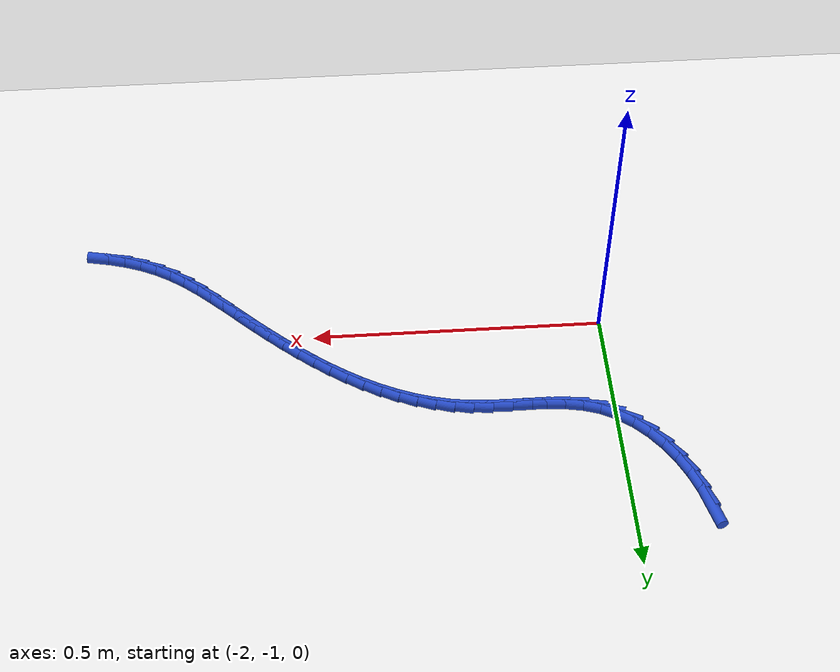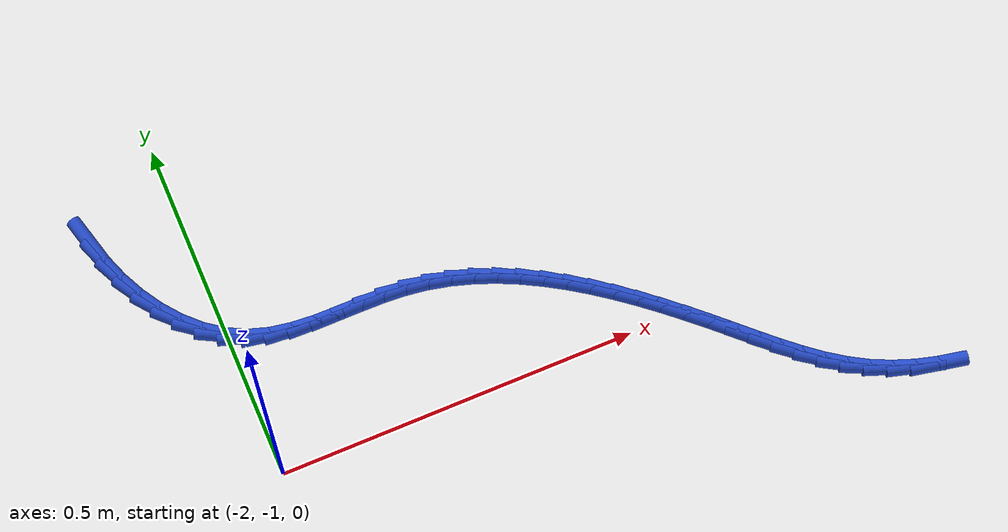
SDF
<sdf version="1.6">
 <world name="default">
  <model name="ground_plane">
   <static>1</static>
   <link name="link">
    <collision name="collision">
     <geometry><plane><normal>0 0 1</normal><size>100 100</size></plane></geometry>
     <surface><friction><ode><mu>100</mu><mu2>50</mu2></ode></friction></surface>
    </collision>
    <visual name="visual">
     <cast_shadows>0</cast_shadows>
     <geometry><plane><normal>0 0 1</normal><size>100 100</size></plane></geometry>
     <material>
      <script><uri>file://media/materials/scripts/gazebo.material</uri><name>Gazebo/WhiteGlow</name></script>
     </material>
    </visual>
   </link>
  </model>
  <model name="line">
   <link name="link_134">
    <pose>-2.124161990740954 -0.5968419919626377 0.01 0 1.57 -1.3200417149505876</pose>
    <collision name="collision">
     <geometry><cylinder><radius>0.01</radius><length>0.08</length></cylinder></geometry>
    </collision>
    <visual name="visual">
     <material>
      <script><name>Gazebo/Blue</name><uri>file://media/materials/scripts/gazebo.material</uri></script>
     </material>
     <geometry><cylinder><radius>0.01</radius><length>0.08</length></cylinder></geometry>
    </visual>
   </link>
   <link name="link_135">
    <pose>-2.115562713282065 -0.6304137877513238 0.01 0 1.57 -1.2233015934322184</pose>
    <collision name="collision">
     <geometry><cylinder><radius>0.01</radius><length>0.08</length></cylinder></geometry>
    </collision>
    <visual name="visual">
     <material>
      <script><name>Gazebo/Blue</name><uri>file://media/materials/scripts/gazebo.material</uri></script>
     </material>
     <geometry><cylinder><radius>0.01</radius><length>0.08</length></cylinder></geometry>
    </visual>
   </link>
   <link name="link_136">
    <pose>-2.1037285020034258 -0.6630876493500641 0.01 0 1.57 -1.1254449375031956</pose>
    <collision name="collision">
     <geometry><cylinder><radius>0.01</radius><length>0.08</length></cylinder></geometry>
    </collision>
    <visual name="visual">
     <material>
      <script><name>Gazebo/Blue</name><uri>file://media/materials/scripts/gazebo.material</uri></script>
     </material>
     <geometry><cylinder><radius>0.01</radius><length>0.08</length></cylinder></geometry>
    </visual>
   </link>
   <link name="link_137">
    <pose>-2.088856327948543 -0.6942443596587087 0.01 0 1.57 -1.022786203440123</pose>
    <collision name="collision">
     <geometry><cylinder><radius>0.01</radius><length>0.08</length></cylinder></geometry>
    </collision>
    <visual name="visual">
     <material>
      <script><name>Gazebo/Blue</name><uri>file://media/materials/scripts/gazebo.material</uri></script>
     </material>
     <geometry><cylinder><radius>0.01</radius><length>0.08</length></cylinder></geometry>
    </visual>
   </link>
   <link name="link_138">
    <pose>-2.0711431621609258 -0.7232647015771075 0.01 0 1.57 -0.9114386806751857</pose>
    <collision name="collision">
     <geometry><cylinder><radius>0.01</radius><length>0.08</length></cylinder></geometry>
    </collision>
    <visual name="visual">
     <material>
      <script><name>Gazebo/Blue</name><uri>file://media/materials/scripts/gazebo.material</uri></script>
     </material>
     <geometry><cylinder><radius>0.01</radius><length>0.08</length></cylinder></geometry>
    </visual>
   </link>
   <link name="link_139">
    <pose>-2.0507859756840827 -0.7495294580051103 0.01 0 1.57 -0.7872740608458154</pose>
    <collision name="collision">
     <geometry><cylinder><radius>0.01</radius><length>0.08</length></cylinder></geometry>
    </collision>
    <visual name="visual">
     <material>
      <script><name>Gazebo/Blue</name><uri>file://media/materials/scripts/gazebo.material</uri></script>
     </material>
     <geometry><cylinder><radius>0.01</radius><length>0.08</length></cylinder></geometry>
    </visual>
   </link>
   <link name="link_140">
    <pose>-2.027981739561523 -0.7724194118425677 0.01 0 1.57 -0.6461829305289528</pose>
    <collision name="collision">
     <geometry><cylinder><radius>0.01</radius><length>0.08</length></cylinder></geometry>
    </collision>
    <visual name="visual">
     <material>
      <script><name>Gazebo/Blue</name><uri>file://media/materials/scripts/gazebo.material</uri></script>
     </material>
     <geometry><cylinder><radius>0.01</radius><length>0.08</length></cylinder></geometry>
    </visual>
   </link>
   <link name="link_141">
    <pose>-2.002927424836756 -0.791315345989328 0.01 0 1.57 -0.4849294568675336</pose>
    <collision name="collision">
     <geometry><cylinder><radius>0.01</radius><length>0.08</length></cylinder></geometry>
    </collision>
    <visual name="visual">
     <material>
      <script><name>Gazebo/Blue</name><uri>file://media/materials/scripts/gazebo.material</uri></script>
     </material>
     <geometry><cylinder><radius>0.01</radius><length>0.08</length></cylinder></geometry>
    </visual>
   </link>
   <link name="link_142">
    <pose>-1.9758200026498047 -0.8055980442841982 0.01 0 1.57 -0.3127565884070227</pose>
    <collision name="collision">
     <geometry><cylinder><radius>0.01</radius><length>0.08</length></cylinder></geometry>
    </collision>
    <visual name="visual">
     <material>
      <script><name>Gazebo/Blue</name><uri>file://media/materials/scripts/gazebo.material</uri></script>
     </material>
     <geometry><cylinder><radius>0.01</radius><length>0.08</length></cylinder></geometry>
    </visual>
   </link>
   <link name="link_143">
    <pose>-1.9468878497791102 -0.8149538241472776 0.01 0 1.57 -0.17206348354290124</pose>
    <collision name="collision">
     <geometry><cylinder><radius>0.01</radius><length>0.08</length></cylinder></geometry>
    </collision>
    <visual name="visual">
     <material>
      <script><name>Gazebo/Blue</name><uri>file://media/materials/scripts/gazebo.material</uri></script>
     </material>
     <geometry><cylinder><radius>0.01</radius><length>0.08</length></cylinder></geometry>
    </visual>
   </link>
   <link name="link_144">
    <pose>-1.9164795281618556 -0.8202382389645653 0.01 0 1.57 -0.07439324411713762</pose>
    <collision name="collision">
     <geometry><cylinder><radius>0.01</radius><length>0.08</length></cylinder></geometry>
    </collision>
    <visual name="visual">
     <material>
      <script><name>Gazebo/Blue</name><uri>file://media/materials/scripts/gazebo.material</uri></script>
     </material>
     <geometry><cylinder><radius>0.01</radius><length>0.08</length></cylinder></geometry>
    </visual>
   </link>
   <link name="link_145">
    <pose>-1.8849723450228324 -0.822586494156218 0.01 0 1.57 -0.016980137247183336</pose>
    <collision name="collision">
     <geometry><cylinder><radius>0.01</radius><length>0.08</length></cylinder></geometry>
    </collision>
    <visual name="visual">
     <material>
      <script><name>Gazebo/Blue</name><uri>file://media/materials/scripts/gazebo.material</uri></script>
     </material>
     <geometry><cylinder><radius>0.01</radius><length>0.08</length></cylinder></geometry>
    </visual>
   </link>
   <link name="link_146">
    <pose>-1.8527436075868278 -0.8231337951423926 0.01 0 1.57 0.0036363654988813853</pose>
    <collision name="collision">
     <geometry><cylinder><radius>0.01</radius><length>0.08</length></cylinder></geometry>
    </collision>
    <visual name="visual">
     <material>
      <script><name>Gazebo/Blue</name><uri>file://media/materials/scripts/gazebo.material</uri></script>
     </material>
     <geometry><cylinder><radius>0.01</radius><length>0.08</length></cylinder></geometry>
    </visual>
   </link>
   <link name="link_147">
    <pose>-1.8201706230786319 -0.8230153473432464 0.01 0 1.57 -0.010786602278580752</pose>
    <collision name="collision">
     <geometry><cylinder><radius>0.01</radius><length>0.08</length></cylinder></geometry>
    </collision>
    <visual name="visual">
     <material>
      <script><name>Gazebo/Blue</name><uri>file://media/materials/scripts/gazebo.material</uri></script>
     </material>
     <geometry><cylinder><radius>0.01</radius><length>0.08</length></cylinder></geometry>
    </visual>
   </link>
   <link name="link_148">
    <pose>-1.787630698723033 -0.8233663561789359 0.01 0 1.57 -0.060793276029732245</pose>
    <collision name="collision">
     <geometry><cylinder><radius>0.01</radius><length>0.08</length></cylinder></geometry>
    </collision>
    <visual name="visual">
     <material>
      <script><name>Gazebo/Blue</name><uri>file://media/materials/scripts/gazebo.material</uri></script>
     </material>
     <geometry><cylinder><radius>0.01</radius><length>0.08</length></cylinder></geometry>
    </visual>
   </link>
   <link name="link_149">
    <pose>-1.755501141744822 -0.8253220270696185 0.01 0 1.57 -0.1416774050345672</pose>
    <collision name="collision">
     <geometry><cylinder><radius>0.01</radius><length>0.08</length></cylinder></geometry>
    </collision>
    <visual name="visual">
     <material>
      <script><name>Gazebo/Blue</name><uri>file://media/materials/scripts/gazebo.material</uri></script>
     </material>
     <geometry><cylinder><radius>0.01</radius><length>0.08</length></cylinder></geometry>
    </visual>
   </link>
   <link name="link_150">
    <pose>-1.724093339533214 -0.8298018166775174 0.01 0 1.57 -0.22574441145568422</pose>
    <collision name="collision">
     <geometry><cylinder><radius>0.01</radius><length>0.08</length></cylinder></geometry>
    </collision>
    <visual name="visual">
     <material>
      <script><name>Gazebo/Blue</name><uri>file://media/materials/scripts/gazebo.material</uri></script>
     </material>
     <geometry><cylinder><radius>0.01</radius><length>0.08</length></cylinder></geometry>
    </visual>
   </link>
   <link name="link_151">
    <pose>-1.693448147334491 -0.8368397581301582 0.01 0 1.57 -0.30458334452252067</pose>
    <collision name="collision">
     <geometry><cylinder><radius>0.01</radius><length>0.08</length></cylinder></geometry>
    </collision>
    <visual name="visual">
     <material>
      <script><name>Gazebo/Blue</name><uri>file://media/materials/scripts/gazebo.material</uri></script>
     </material>
     <geometry><cylinder><radius>0.01</radius><length>0.08</length></cylinder></geometry>
    </visual>
   </link>
   <link name="link_152">
    <pose>-1.6635370298684902 -0.8462427765872995 0.01 0 1.57 -0.3773378083816612</pose>
    <collision name="collision">
     <geometry><cylinder><radius>0.01</radius><length>0.08</length></cylinder></geometry>
    </collision>
    <visual name="visual">
     <material>
      <script><name>Gazebo/Blue</name><uri>file://media/materials/scripts/gazebo.material</uri></script>
     </material>
     <geometry><cylinder><radius>0.01</radius><length>0.08</length></cylinder></geometry>
    </visual>
   </link>
   <link name="link_153">
    <pose>-1.6343314518127405 -0.8578177970702333 0.01 0 1.57 -0.4435305545102598</pose>
    <collision name="collision">
     <geometry><cylinder><radius>0.01</radius><length>0.08</length></cylinder></geometry>
    </collision>
    <visual name="visual">
     <material>
      <script><name>Gazebo/Blue</name><uri>file://media/materials/scripts/gazebo.material</uri></script>
     </material>
     <geometry><cylinder><radius>0.01</radius><length>0.08</length></cylinder></geometry>
    </visual>
   </link>
   <link name="link_154">
    <pose>-1.6058028778447746 -0.8713717446002509 0.01 0 1.57 -0.5030013114780371</pose>
    <collision name="collision">
     <geometry><cylinder><radius>0.01</radius><length>0.08</length></cylinder></geometry>
    </collision>
    <visual name="visual">
     <material>
      <script><name>Gazebo/Blue</name><uri>file://media/materials/scripts/gazebo.material</uri></script>
     </material>
     <geometry><cylinder><radius>0.01</radius><length>0.08</length></cylinder></geometry>
    </visual>
   </link>
   <link name="link_155">
    <pose>-1.5779227726421228 -0.8867115441986446 0.01 0 1.57 -0.5558238931308515</pose>
    <collision name="collision">
     <geometry><cylinder><radius>0.01</radius><length>0.08</length></cylinder></geometry>
    </collision>
    <visual name="visual">
     <material>
      <script><name>Gazebo/Blue</name><uri>file://media/materials/scripts/gazebo.material</uri></script>
     </material>
     <geometry><cylinder><radius>0.01</radius><length>0.08</length></cylinder></geometry>
    </visual>
   </link>
   <link name="link_156">
    <pose>-1.5506626008823143 -0.9036441208867061 0.01 0 1.57 -0.6022236095194996</pose>
    <collision name="collision">
     <geometry><cylinder><radius>0.01</radius><length>0.08</length></cylinder></geometry>
    </collision>
    <visual name="visual">
     <material>
      <script><name>Gazebo/Blue</name><uri>file://media/materials/scripts/gazebo.material</uri></script>
     </material>
     <geometry><cylinder><radius>0.01</radius><length>0.08</length></cylinder></geometry>
    </visual>
   </link>
   <link name="link_157">
    <pose>-1.52399382724288 -0.921976399685728 0.01 0 1.57 -0.6425068228083933</pose>
    <collision name="collision">
     <geometry><cylinder><radius>0.01</radius><length>0.08</length></cylinder></geometry>
    </collision>
    <visual name="visual">
     <material>
      <script><name>Gazebo/Blue</name><uri>file://media/materials/scripts/gazebo.material</uri></script>
     </material>
     <geometry><cylinder><radius>0.01</radius><length>0.08</length></cylinder></geometry>
    </visual>
   </link>
   <link name="link_158">
    <pose>-1.4978879164013512 -0.9415153056170011 0.01 0 1.57 -0.6770066691004653</pose>
    <collision name="collision">
     <geometry><cylinder><radius>0.01</radius><length>0.08</length></cylinder></geometry>
    </collision>
    <visual name="visual">
     <material>
      <script><name>Gazebo/Blue</name><uri>file://media/materials/scripts/gazebo.material</uri></script>
     </material>
     <geometry><cylinder><radius>0.01</radius><length>0.08</length></cylinder></geometry>
    </visual>
   </link>
   <link name="link_159">
    <pose>-1.4723163330352582 -0.9620677637018178 0.01 0 1.57 -0.706044107178139</pose>
    <collision name="collision">
     <geometry><cylinder><radius>0.01</radius><length>0.08</length></cylinder></geometry>
    </collision>
    <visual name="visual">
     <material>
      <script><name>Gazebo/Blue</name><uri>file://media/materials/scripts/gazebo.material</uri></script>
     </material>
     <geometry><cylinder><radius>0.01</radius><length>0.08</length></cylinder></geometry>
    </visual>
   </link>
   <link name="link_160">
    <pose>-1.4472505418221306 -0.9834406989614697 0.01 0 1.57 -0.7299012358671337</pose>
    <collision name="collision">
     <geometry><cylinder><radius>0.01</radius><length>0.08</length></cylinder></geometry>
    </collision>
    <visual name="visual">
     <material>
      <script><name>Gazebo/Blue</name><uri>file://media/materials/scripts/gazebo.material</uri></script>
     </material>
     <geometry><cylinder><radius>0.01</radius><length>0.08</length></cylinder></geometry>
    </visual>
   </link>
   <link name="link_161">
    <pose>-1.4226620074395002 -1.005441036417249 0.01 0 1.57 -0.7488032931205533</pose>
    <collision name="collision">
     <geometry><cylinder><radius>0.01</radius><length>0.08</length></cylinder></geometry>
    </collision>
    <visual name="visual">
     <material>
      <script><name>Gazebo/Blue</name><uri>file://media/materials/scripts/gazebo.material</uri></script>
     </material>
     <geometry><cylinder><radius>0.01</radius><length>0.08</length></cylinder></geometry>
    </visual>
   </link>
   <link name="link_162">
    <pose>-1.3985221945648958 -1.0278757010904478 0.01 0 1.57 -0.7629027974011423</pose>
    <collision name="collision">
     <geometry><cylinder><radius>0.01</radius><length>0.08</length></cylinder></geometry>
    </collision>
    <visual name="visual">
     <material>
      <script><name>Gazebo/Blue</name><uri>file://media/materials/scripts/gazebo.material</uri></script>
     </material>
     <geometry><cylinder><radius>0.01</radius><length>0.08</length></cylinder></geometry>
    </visual>
   </link>
   <link name="link_163">
    <pose>-1.3748024900663516 -1.0505515446694687 0.01 0 1.57 -0.7694624262986421</pose>
    <collision name="collision">
     <geometry><cylinder><radius>0.01</radius><length>0.08</length></cylinder></geometry>
    </collision>
    <visual name="visual">
     <material>
      <script><name>Gazebo/Blue</name><uri>file://media/materials/scripts/gazebo.material</uri></script>
     </material>
     <geometry><cylinder><radius>0.01</radius><length>0.08</length></cylinder></geometry>
    </visual>
   </link>
   <link name="link_164">
    <pose>-1.35140752954042 -1.0732125079681303 0.01 0 1.57 -0.7603465999125361</pose>
    <collision name="collision">
     <geometry><cylinder><radius>0.01</radius><length>0.08</length></cylinder></geometry>
    </collision>
    <visual name="visual">
     <material>
      <script><name>Gazebo/Blue</name><uri>file://media/materials/scripts/gazebo.material</uri></script>
     </material>
     <geometry><cylinder><radius>0.01</radius><length>0.08</length></cylinder></geometry>
    </visual>
   </link>
   <link name="link_165">
    <pose>-1.3280534292640118 -1.0954248585513124 0.01 0 1.57 -0.7335560197757847</pose>
    <collision name="collision">
     <geometry><cylinder><radius>0.01</radius><length>0.08</length></cylinder></geometry>
    </collision>
    <visual name="visual">
     <material>
      <script><name>Gazebo/Blue</name><uri>file://media/materials/scripts/gazebo.material</uri></script>
     </material>
     <geometry><cylinder><radius>0.01</radius><length>0.08</length></cylinder></geometry>
    </visual>
   </link>
   <link name="link_166">
    <pose>-1.3044232610177107 -1.1167237206345912 0.01 0 1.57 -0.6882354455578719</pose>
    <collision name="collision">
     <geometry><cylinder><radius>0.01</radius><length>0.08</length></cylinder></geometry>
    </collision>
    <visual name="visual">
     <material>
      <script><name>Gazebo/Blue</name><uri>file://media/materials/scripts/gazebo.material</uri></script>
     </material>
     <geometry><cylinder><radius>0.01</radius><length>0.08</length></cylinder></geometry>
    </visual>
   </link>
   <link name="link_167">
    <pose>-1.2802000965821019 -1.1366442184335412 0.01 0 1.57 -0.6235363724543733</pose>
    <collision name="collision">
     <geometry><cylinder><radius>0.01</radius><length>0.08</length></cylinder></geometry>
    </collision>
    <visual name="visual">
     <material>
      <script><name>Gazebo/Blue</name><uri>file://media/materials/scripts/gazebo.material</uri></script>
     </material>
     <geometry><cylinder><radius>0.01</radius><length>0.08</length></cylinder></geometry>
    </visual>
   </link>
   <link name="link_168">
    <pose>-1.2550670077377681 -1.1547214761637383 0.01 0 1.57 -0.5392204292731001</pose>
    <collision name="collision">
     <geometry><cylinder><radius>0.01</radius><length>0.08</length></cylinder></geometry>
    </collision>
    <visual name="visual">
     <material>
      <script><name>Gazebo/Blue</name><uri>file://media/materials/scripts/gazebo.material</uri></script>
     </material>
     <geometry><cylinder><radius>0.01</radius><length>0.08</length></cylinder></geometry>
    </visual>
   </link>
   <link name="link_169">
    <pose>-1.228709143915834 -1.1704932426056176 0.01 0 1.57 -0.44461827144093263</pose>
    <collision name="collision">
     <geometry><cylinder><radius>0.01</radius><length>0.08</length></cylinder></geometry>
    </collision>
    <visual name="visual">
     <material>
      <script><name>Gazebo/Blue</name><uri>file://media/materials/scripts/gazebo.material</uri></script>
     </material>
     <geometry><cylinder><radius>0.01</radius><length>0.08</length></cylinder></geometry>
    </visual>
   </link>
   <link name="link_170">
    <pose>-1.200976805274258 -1.1837058910342724 0.01 0 1.57 -0.35548205775963015</pose>
    <collision name="collision">
     <geometry><cylinder><radius>0.01</radius><length>0.08</length></cylinder></geometry>
    </collision>
    <visual name="visual">
     <material>
      <script><name>Gazebo/Blue</name><uri>file://media/materials/scripts/gazebo.material</uri></script>
     </material>
     <geometry><cylinder><radius>0.01</radius><length>0.08</length></cylinder></geometry>
    </visual>
   </link>
   <link name="link_171">
    <pose>-1.1720027532360084 -1.1944626102217808 0.01 0 1.57 -0.2737321791190383</pose>
    <collision name="collision">
     <geometry><cylinder><radius>0.01</radius><length>0.08</length></cylinder></geometry>
    </collision>
    <visual name="visual">
     <material>
      <script><name>Gazebo/Blue</name><uri>file://media/materials/scripts/gazebo.material</uri></script>
     </material>
     <geometry><cylinder><radius>0.01</radius><length>0.08</length></cylinder></geometry>
    </visual>
   </link>
   <link name="link_172">
    <pose>-1.141947428850036 -1.2029015548655548 0.01 0 1.57 -0.19938431295111222</pose>
    <collision name="collision">
     <geometry><cylinder><radius>0.01</radius><length>0.08</length></cylinder></geometry>
    </collision>
    <visual name="visual">
     <material>
      <script><name>Gazebo/Blue</name><uri>file://media/materials/scripts/gazebo.material</uri></script>
     </material>
     <geometry><cylinder><radius>0.01</radius><length>0.08</length></cylinder></geometry>
    </visual>
   </link>
  </model>
 </world>
</sdf>
